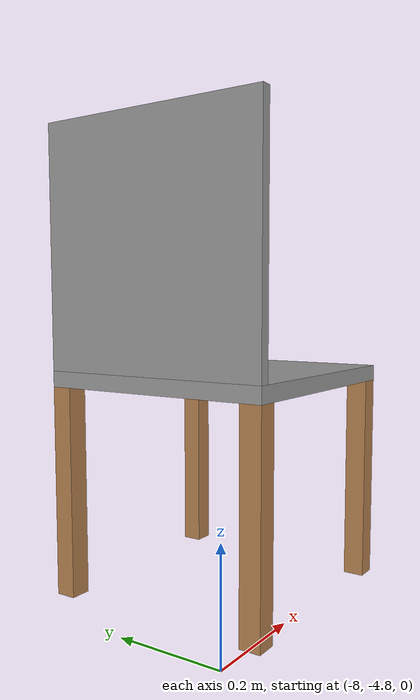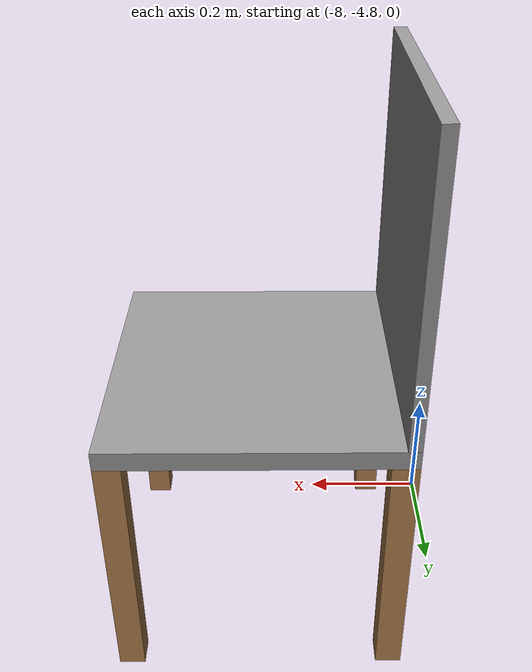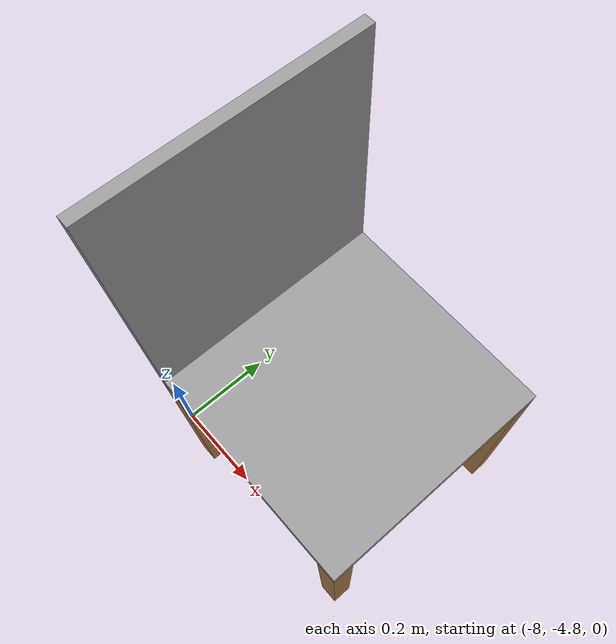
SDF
<?xml version="1.0" ?>
<sdf version='1.4'>
  <model name='silla_4'>
    <link name='silla_link'>
      <pose>0 0 0 0 -0 0</pose>
      <inertial>
        <pose>0.0215 0 0.353 0 -0 0</pose>
        <mass>2</mass>
        <inertia>
          <ixx>0.674432</ixx>
          <ixy>0</ixy>
          <ixz>-0.012986</ixz>
          <iyy>0.682753</iyy>
          <iyz>0</iyz>
          <izz>0.675561</izz>
        </inertia>
      </inertial>
      <collision name='silla_link_collision'>
        <pose>0 0 0.415 0 -0 0</pose>
        <geometry>
          <box>
            <size>0.45 0.45 0.03</size>
          </box>
        </geometry>
        <surface>
          <contact>
            <ode/>
          </contact>
          <friction>
            <ode>
              <mu>100</mu>
              <mu2>100</mu2>
            </ode>
          </friction>
          <bounce/>
        </surface>
        <max_contacts>10</max_contacts>
      </collision>
      <collision name='silla_link_collision_pata_1_link'>
        <pose>0.205 0.205 0.2 0 -0 0</pose>
        <geometry>
          <box>
            <size>0.04 0.04 0.4</size>
          </box>
        </geometry>
        <surface>
          <contact>
            <ode/>
          </contact>
          <friction>
            <ode>
              <mu>100</mu>
              <mu2>100</mu2>
            </ode>
          </friction>
          <bounce/>
        </surface>
        <surface>
          <contact>
            <ode/>
          </contact>
          <friction>
            <ode>
              <mu>100</mu>
              <mu2>100</mu2>
            </ode>
          </friction>
        </surface>
        <max_contacts>10</max_contacts>
      </collision>
      <collision name='silla_link_collision_pata_2_link'>
        <pose>0.205 -0.205 0.2 0 -0 0</pose>
        <geometry>
          <box>
            <size>0.04 0.04 0.4</size>
          </box>
        </geometry>
        <surface>
          <contact>
            <ode/>
          </contact>
          <friction>
            <ode>
              <mu>100</mu>
              <mu2>100</mu2>
            </ode>
          </friction>
          <bounce/>
        </surface>
        <surface>
          <contact>
            <ode/>
          </contact>
          <friction>
            <ode>
              <mu>100</mu>
              <mu2>100</mu2>
            </ode>
          </friction>
        </surface>
        <max_contacts>10</max_contacts>
      </collision>
      <collision name='silla_link_collision_pata_3_link'>
        <pose>-0.205 -0.205 0.2 0 -0 0</pose>
        <geometry>
          <box>
            <size>0.04 0.04 0.4</size>
          </box>
        </geometry>
        <surface>
          <contact>
            <ode/>
          </contact>
          <friction>
            <ode>
              <mu>100</mu>
              <mu2>100</mu2>
            </ode>
          </friction>
          <bounce/>
        </surface>
        <surface>
          <contact>
            <ode/>
          </contact>
          <friction>
            <ode>
              <mu>100</mu>
              <mu2>100</mu2>
            </ode>
          </friction>
        </surface>
        <max_contacts>10</max_contacts>
      </collision>
      <collision name='silla_link_collision_pata_4_link'>
        <pose>-0.205 0.205 0.2 0 -0 0</pose>
        <geometry>
          <box>
            <size>0.04 0.04 0.4</size>
          </box>
        </geometry>
        <surface>
          <contact>
            <ode/>
          </contact>
          <friction>
            <ode>
              <mu>100</mu>
              <mu2>100</mu2>
            </ode>
          </friction>
          <bounce/>
        </surface>
        <surface>
          <contact>
            <ode/>
          </contact>
          <friction>
            <ode>
              <mu>100</mu>
              <mu2>100</mu2>
            </ode>
          </friction>
        </surface>
        <max_contacts>10</max_contacts>
      </collision>
      <collision name='silla_link_collision_respaldo_link'>
        <pose>0.215 0 0.655 0 -0 0</pose>
        <geometry>
          <box>
            <size>0.02 0.45 0.45</size>
          </box>
        </geometry>
        <surface>
          <contact>
            <ode/>
          </contact>
          <friction>
            <ode>
              <mu>100</mu>
              <mu2>100</mu2>
            </ode>
          </friction>
          <bounce/>
        </surface>
        <surface>
          <contact>
            <ode/>
          </contact>
          <friction>
            <ode>
              <mu>100</mu>
              <mu2>100</mu2>
            </ode>
          </friction>
        </surface>
        <max_contacts>10</max_contacts>
      </collision>
      <visual name='silla_link_visual'>
        <pose>0 0 0.415 0 -0 0</pose>
        <geometry>
          <box>
            <size>0.45 0.45 0.03</size>
          </box>
        </geometry>
        <material>
          <script>
            <name>Gazebo/Grey</name>
            <uri>__default__</uri>
          </script>
        </material>
      </visual>
      <visual name='silla_link_visual_pata_1_link'>
        <pose>0.205 0.205 0.2 0 -0 0</pose>
        <geometry>
          <box>
            <size>0.04 0.04 0.4</size>
          </box>
        </geometry>
        <material>
          <script>
            <name>Gazebo/Wood</name>
            <uri>__default__</uri>
          </script>
        </material>
      </visual>
      <visual name='silla_link_visual_pata_2_link'>
        <pose>0.205 -0.205 0.2 0 -0 0</pose>
        <geometry>
          <box>
            <size>0.04 0.04 0.4</size>
          </box>
        </geometry>
        <material>
          <script>
            <name>Gazebo/Wood</name>
            <uri>__default__</uri>
          </script>
        </material>
      </visual>
      <visual name='silla_link_visual_pata_3_link'>
        <pose>-0.205 -0.205 0.2 0 -0 0</pose>
        <geometry>
          <box>
            <size>0.04 0.04 0.4</size>
          </box>
        </geometry>
        <material>
          <script>
            <name>Gazebo/Wood</name>
            <uri>__default__</uri>
          </script>
        </material>
      </visual>
      <visual name='silla_link_visual_pata_4_link'>
        <pose>-0.205 0.205 0.2 0 -0 0</pose>
        <geometry>
          <box>
            <size>0.04 0.04 0.4</size>
          </box>
        </geometry>
        <material>
          <script>
            <name>Gazebo/Wood</name>
            <uri>__default__</uri>
          </script>
        </material>
      </visual>
      <visual name='silla_link_visual_respaldo_link'>
        <pose>0.215 0 0.655 0 -0 0</pose>
        <geometry>
          <box>
            <size>0.02 0.45 0.45</size>
          </box>
        </geometry>
        <material>
          <script>
            <name>Gazebo/Grey</name>
            <uri>__default__</uri>
          </script>
        </material>
      </visual>
      <velocity_decay>
        <linear>0</linear>
        <angular>0</angular>
      </velocity_decay>
      <velocity_decay>
        <linear>0</linear>
        <angular>0</angular>
      </velocity_decay>
      <velocity_decay>
        <linear>0</linear>
        <angular>0</angular>
      </velocity_decay>
      <velocity_decay>
        <linear>0</linear>
        <angular>0</angular>
      </velocity_decay>
      <velocity_decay>
        <linear>0</linear>
        <angular>0</angular>
      </velocity_decay>
      <gravity>1</gravity>
      <velocity_decay>
        <linear>0</linear>
        <angular>0</angular>
      </velocity_decay>
      <self_collide>1</self_collide>
      <kinematic>0</kinematic>
    </link>
    <pose>-7.7 -4.6 0 0 -0 3.14</pose>
    <static>0</static>
  </model>
</sdf>
